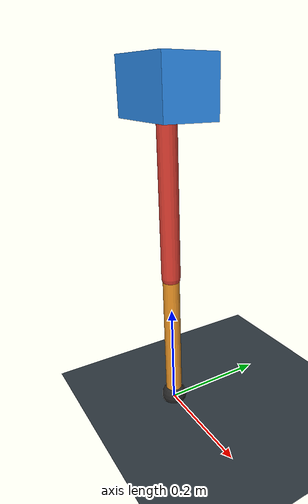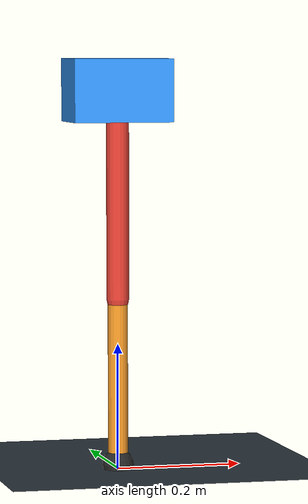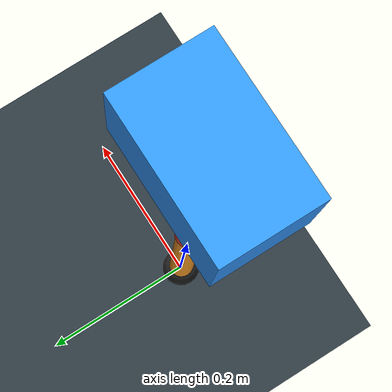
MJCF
<mujoco model="single_axis_two_bar">
  <compiler angle="radian" inertiafromgeom="true"/>
  <option timestep="0.001" integrator="implicitfast" gravity="0 0 -9.81"/>
  <default>
    <joint damping="0.08"/>
    <geom friction="1.2 0.01 0.0001" condim="3"/>
  </default>
  <worldbody>
    <geom name="floor" type="plane" size="5 5 0.1" rgba="0.18 0.22 0.25 1"/>
    <body name="carriage" pos="0 0 0.604456709292155">
      <joint name="pole_slide" type="slide" axis="0 0 1"/>
      <geom name="payload" type="box" size="0.08 0.05 0.05" mass="3.368740580478889" rgba="0.2 0.6 1 1"/>
      <body name="thigh" pos="0 0 0">
        <joint name="hip" type="hinge" axis="0 1 0"/>
        <geom name="thigh_link" type="capsule" fromto="0 0 0 0 0 -0.3332667891981367" size="0.018" mass="0.23745699103575757" rgba="0.9 0.25 0.2 1"/>
        <body name="shank" pos="0 0 -0.3332667891981367">
          <joint name="knee" type="hinge" axis="0 1 0"/>
          <geom name="shank_link" type="capsule" fromto="0 0 0 0 0 -0.26411126161851795" size="0.016" mass="0.1881827638256062" rgba="0.95 0.6 0.15 1"/>
          <geom name="foot" type="sphere" pos="0 0 -0.26411126161851795" size="0.025" mass="0.03" rgba="0.15 0.15 0.15 1"/>
          <site name="toe" pos="0 0 -0.26411126161851795" size="0.008"/>
        </body>
      </body>
    </body>
  </worldbody>
  <actuator>
    <motor name="hip_motor" joint="hip" ctrlrange="-34.149849873875226 34.149849873875226"/>
    <motor name="knee_motor" joint="knee" ctrlrange="-154.04750755483792 154.04750755483792"/>
  </actuator>
</mujoco>
